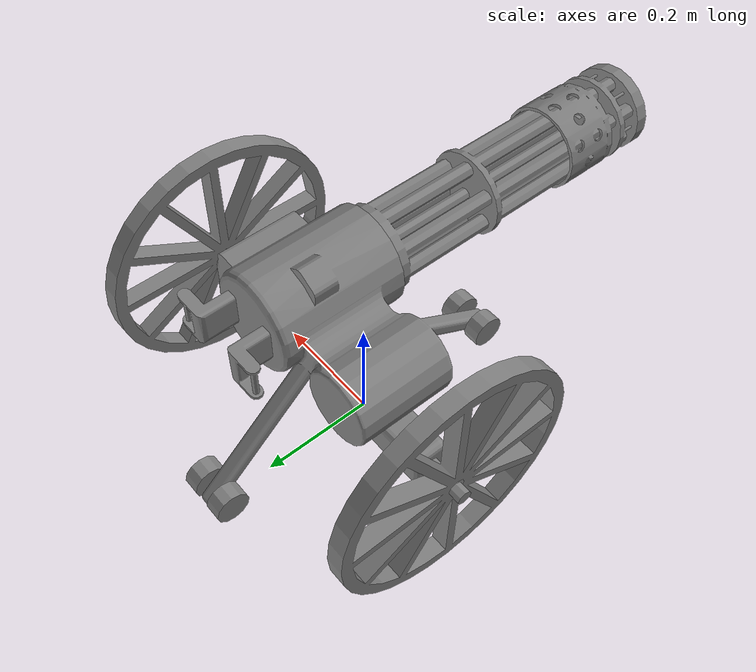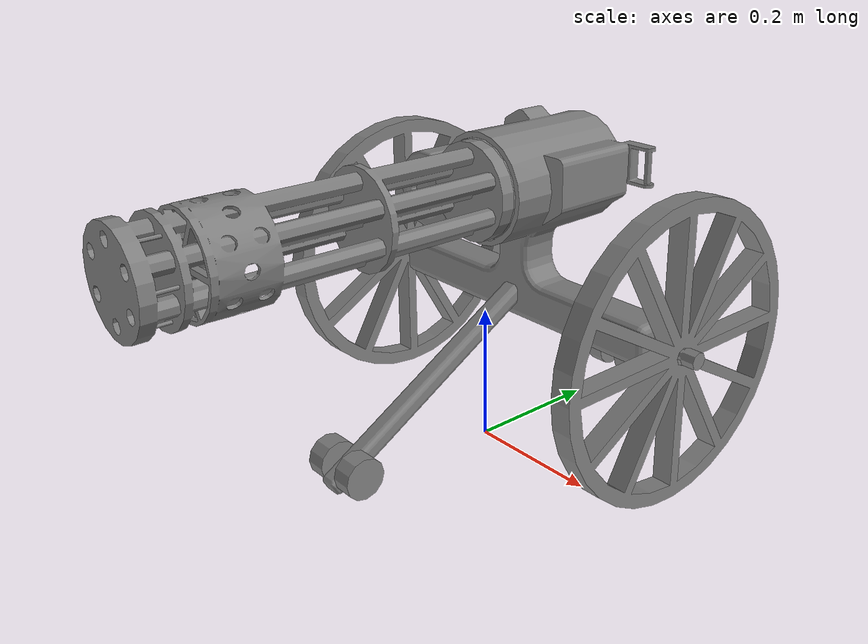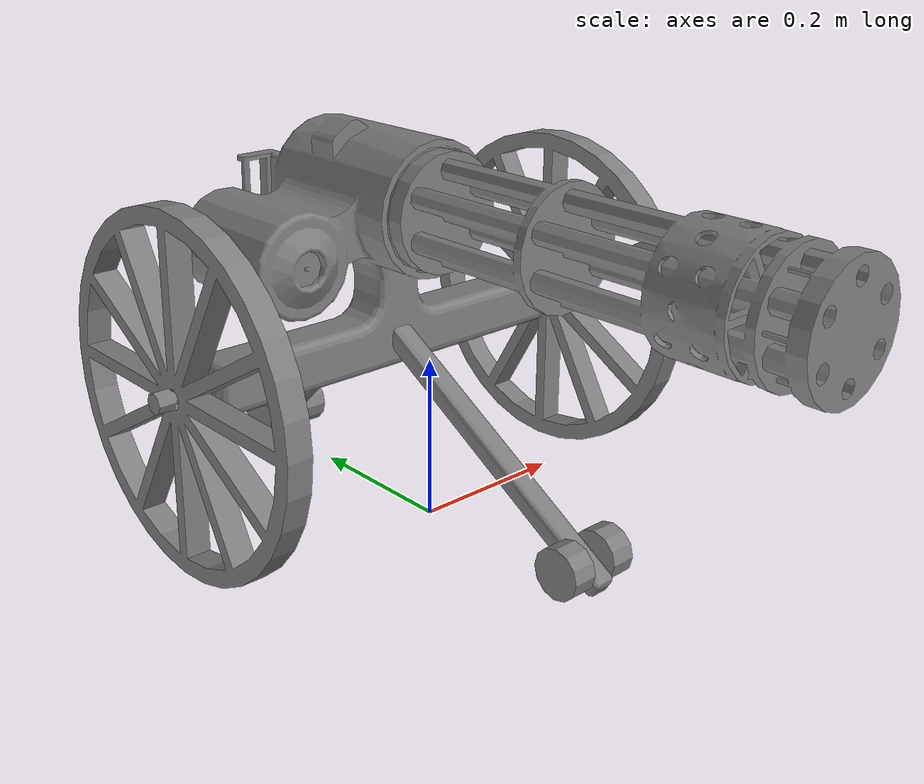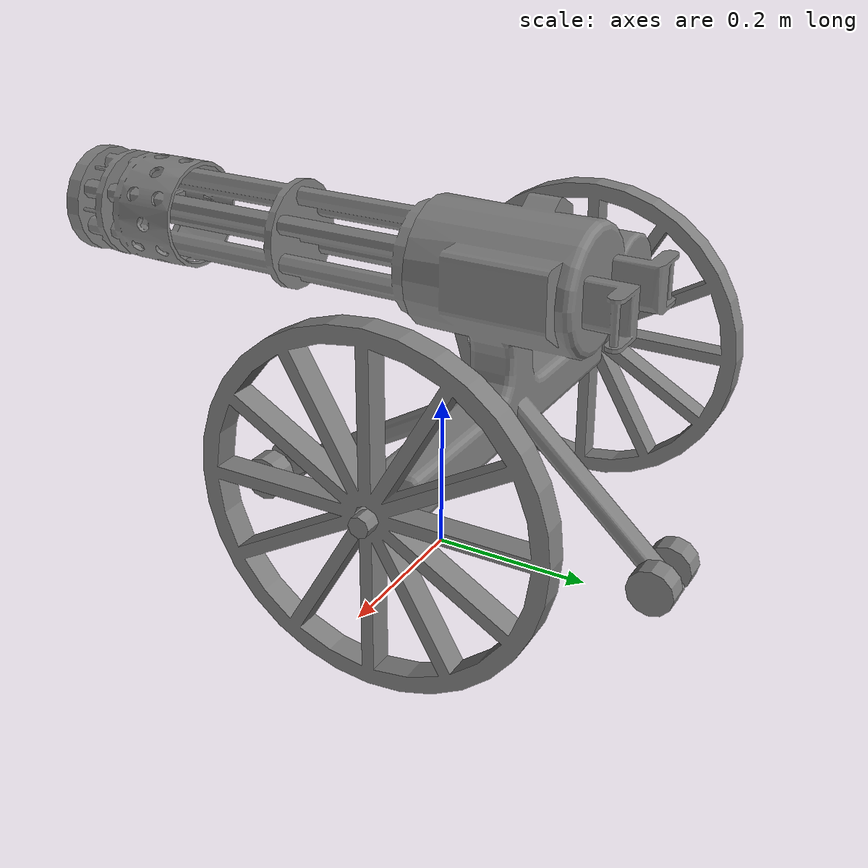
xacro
<?xml version="1.0"?>
<robot xmlns:xacro="http://www.ros.org/wiki/xacro" name="robot_bobot">
  <material name="skin">
    <color rgba="1 0.87 0.76 1" />
  </material>

  <xacro:property name="s" value="0.1" />

  <xacro:include filename="$(find minigun_resources)/models/model.gazebo.xacro" />

  <material name="gray">
    <color rgba="0.5 0.5 0.5 1" />
  </material>

  <link name="base_link" />

  <joint name="frame_joint" type="fixed">
    <parent link="base_link" />
    <child link="frame" />
    <origin xyz="0 0 ${3.833*s}" />
  </joint>

  <xacro:macro name="default_inertial" params="mass">
    <inertial>
      <mass value="${mass}" />
      <inertia ixx="${1e-3}" ixy="0.0" ixz="0.0"
        iyy="${1e-3}" iyz="0.0"
        izz="${1e-3}" />
    </inertial>
  </xacro:macro>

  <xacro:macro name="little_wheel" params="name">
    <link name="${name}">
      <visual>
        <origin rpy="${pi/2} ${pi/2} 0" />
        <geometry>
          <mesh filename="file://$(find minigun_resources)/models/stl/little_wheel.stl"
            scale="${0.1*s} ${0.1*s} ${0.1*s}" />
        </geometry>
        <material name="gray" />
      </visual>
      <collision>
        <origin rpy="0 ${pi/2} 0" xyz="0 0 0" />
        <geometry>
          <cylinder radius="${s*0.3}" length="${s*0.35}" />
        </geometry>
        <material name="gray" />
      </collision>
      <xacro:default_inertial mass="1" />
    </link>
  </xacro:macro>

  <xacro:macro name="wheel" params="name">
    <link name="${name}">
      <visual>
        <origin rpy="${pi/2} ${pi/2} 0" />
        <geometry>
          <mesh filename="file://$(find minigun_resources)/models/stl/wheel.stl"
            scale="${0.1*s} ${0.1*s} ${0.1*s}" />
        </geometry>
        <material name="gray" />
      </visual>
      <collision>
        <origin rpy="0 ${pi/2} 0" xyz="${s*0.15} 0 0" />
        <geometry>
          <cylinder radius="${s*2}" length="${s*0.4}" />
        </geometry>
        <material name="gray" />
      </collision>
      <xacro:default_inertial mass="10" />
    </link>
  </xacro:macro>

  <link name="frame">
    <visual>
      <origin rpy="${pi/2} 0 0" xyz="0 0 0" />
      <geometry>
        <mesh filename="file://$(find minigun_resources)/models/stl/base.stl"
          scale="${0.1*s} ${0.1*s} ${0.1*s}" />
      </geometry>
      <material name="gray" />
    </visual>
    <xacro:default_inertial mass="1" />
  </link>

  <link name="barrel">
    <visual>
      <origin rpy="${pi/2} 0 0" xyz="0 0 0" />
      <geometry>
        <mesh filename="file://$(find minigun_resources)/models/stl/barrel.stl"
          scale="${0.1*s} ${0.1*s} ${0.1*s}" />
      </geometry>
      <material name="gray" />
    </visual>
    <collision>
      <origin rpy="${pi/2} 0 0" xyz="0 ${-1.7*s} 0" />
      <geometry>
        <cylinder length="${7*s}" radius="${0.7*s}" />
      </geometry>
    </collision>
    <xacro:default_inertial mass="10" />
  </link>

  <joint name="barrel_joint" type="continuous">
    <parent link="frame" />
    <child link="barrel" />
    <axis xyz="0 1 0" />
  </joint>

  <xacro:wheel name="left_wheel" />
  <joint name="left_wheel_joint" type="continuous">
    <parent link="frame" />
    <child link="left_wheel" />
    <origin xyz="${2.69*s} ${0.75*s} ${-1.73*s}" />
    <axis xyz="1 0 0" />
  </joint>

  <xacro:wheel name="right_wheel" />
  <joint name="right_wheel_joint" type="continuous">
    <parent link="frame" />
    <child link="right_wheel" />
    <origin xyz="${-3*s} ${0.75*s} ${-1.73*s}" />
    <axis xyz="1 0 0" />
  </joint>

  <xacro:little_wheel name="left_little_wheel" />
  <joint name="left_little_wheel_joint" type="continuous">
    <parent link="frame" />
    <child link="left_little_wheel" />
    <origin xyz="${0.3*s} ${-2.5*s} ${-3.4*s}" />
    <axis xyz="1 0 0" />
  </joint>

  <xacro:little_wheel name="right_little_wheel" />
  <joint name="right_little_wheel_joint" type="continuous">
    <parent link="frame" />
    <child link="right_little_wheel" />
    <origin xyz="${-0.3*s} ${-2.5*s} ${-3.4*s}" />
    <axis xyz="1 0 0" />
  </joint>

  <xacro:little_wheel name="back_left_little_wheel" />
  <joint name="back_left_little_wheel_joint" type="continuous">
    <parent link="frame" />
    <child link="back_left_little_wheel" />
    <origin xyz="${0.3*s} ${3*s} ${-3.4*s}" />
    <axis xyz="1 0 0" />
  </joint>

  <xacro:little_wheel name="back_right_little_wheel" />
  <joint name="back_right_little_wheel_joint" type="continuous">
    <parent link="frame" />
    <child link="back_right_little_wheel" />
    <origin xyz="${-0.3*s} ${3*s} ${-3.4*s}" />
    <axis xyz="1 0 0" />
  </joint>

  <link name="lidar_frame" />
  <joint name="lidar_frame_joint" type="fixed">
    <parent link="frame" />
    <child link="lidar_frame" />
    <origin xyz="0 ${-5.5*s} ${0*s}" rpy="0 0 ${-pi/2}" />
  </joint>

  <link name="depth_frame" />
  <joint name="depth_frame_joint" type="fixed">
    <parent link="frame" />
    <child link="depth_frame" />
    <origin xyz="0 ${-5.5*s} ${0*s}" rpy="0 0 ${-pi/2}" />
  </joint>
</robot>
